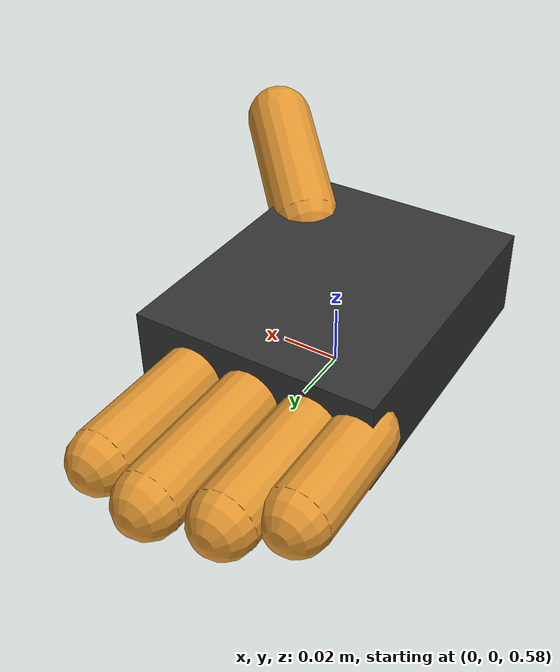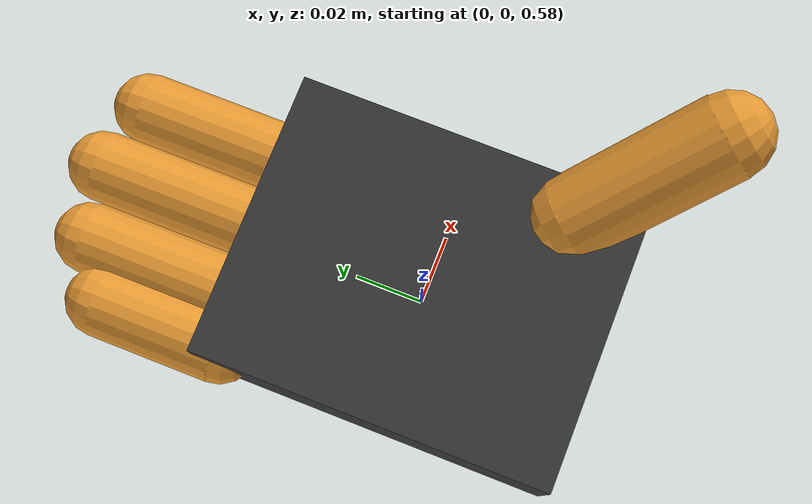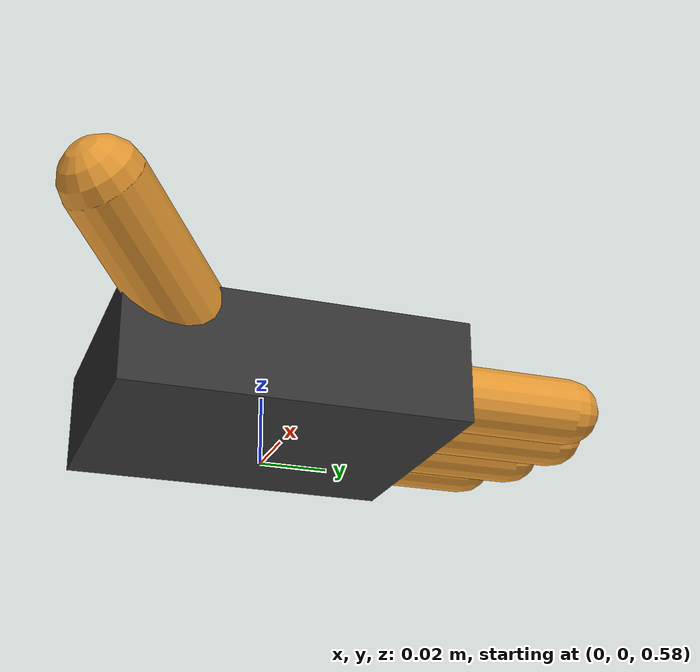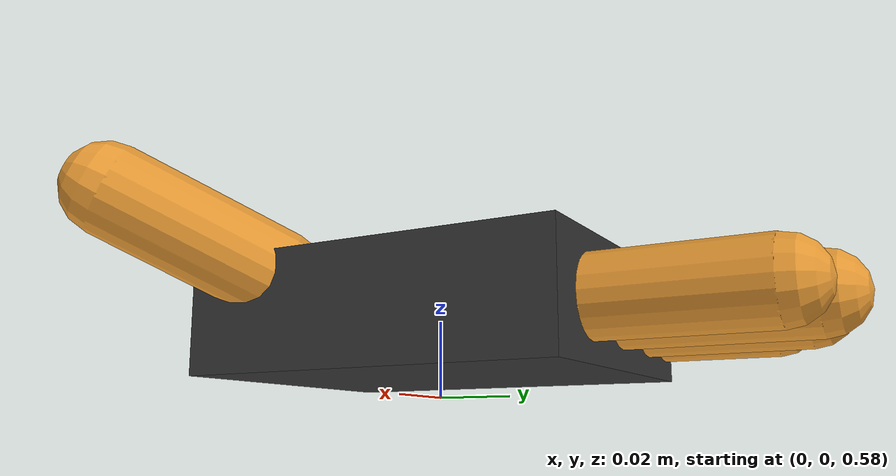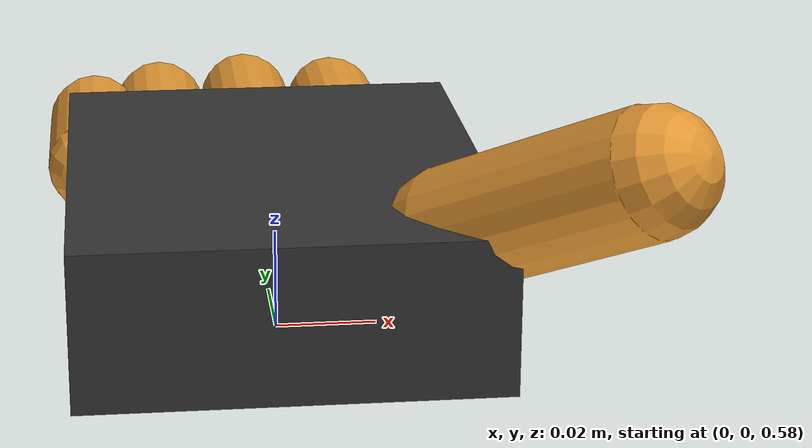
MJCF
<mujoco model="bionic_hand">
    <compiler angle="radian" />
    <option gravity="0 0 -9.81" />

    <asset>
        <texture type="skybox" name="sky" builtin="flat" rgb1="0.8 0.9 1" rgb2="0.8 0.9 1"
            width="512" height="512" />
        <material name="palm_mat" rgba="0.2 0.2 0.2 1" />
        <material name="finger_mat" rgba="0.9 0.6 0.2 1" />
    </asset>

    <worldbody>
        <geom type="plane" size="1 1 0.1" rgba="0.9 0.9 0.9 1" />
        <light pos="0 0 1.5" dir="0 0 -1" />

        <!-- Hand Palm Base (floating or fixed in space) -->
        <body name="palm" pos="0 0 0.6" quat="0 0 1 0">
            <joint name="wrist_joint" type="hinge" axis="0 1 0" range="-1.5 0.2" damping="0.5" />
            <geom type="box" size="0.04 0.05 0.015" material="palm_mat" />

            <!-- 1. Thumb -->
            <body name="thumb_base" pos="-0.03 -0.03 -0.01">
                <joint name="thumb_joint" type="hinge" axis="0 -1 0" range="-1.5 0.2" damping="0.5" />
                <geom type="capsule" size="0.012" fromto="0 0 0 -0.03 -0.03 -0.02"
                    material="finger_mat" />
            </body>

            <!-- 2. Index Finger -->
            <body name="index_base" pos="-0.02 0.05 0">
                <joint name="index_joint" type="hinge" axis="1 0 0" range="0 1.57" damping="0.5" />
                <geom type="capsule" size="0.01" fromto="0 0 0 0 0.04 0" material="finger_mat" />
            </body>

            <!-- 3. Middle Finger -->
            <body name="middle_base" pos="0 0.05 0">
                <joint name="middle_joint" type="hinge" axis="1 0 0" range="0 1.57" damping="0.5" />
                <geom type="capsule" size="0.01" fromto="0 0 0 0 0.045 0" material="finger_mat" />
            </body>

            <!-- 4. Ring Finger -->
            <body name="ring_base" pos="0.02 0.05 0">
                <joint name="ring_joint" type="hinge" axis="1 0 0" range="0 1.57" damping="0.5" />
                <geom type="capsule" size="0.01" fromto="0 0 0 0 0.04 0" material="finger_mat" />
            </body>

            <!-- 5. Pinky Finger -->
            <body name="pinky_base" pos="0.035 0.045 0">
                <joint name="pinky_joint" type="hinge" axis="1 0 0" range="0 1.57" damping="0.5" />
                <geom type="capsule" size="0.01" fromto="0 0 0 0 0.035 0" material="finger_mat" />
            </body>
        </body>
    </worldbody>

    <actuator>
        <position joint="wrist_joint" kp="20" ctrlrange="-1.5 0.2" />
        <position joint="thumb_joint" kp="20" ctrlrange="-1.5 0.2" />
        <position joint="index_joint" kp="15" ctrlrange="0 1.57" />
        <position joint="middle_joint" kp="15" ctrlrange="0 1.57" />
        <position joint="ring_joint" kp="15" ctrlrange="0 1.57" />
        <position joint="pinky_joint" kp="15" ctrlrange="0 1.57" />
    </actuator>
</mujoco>
